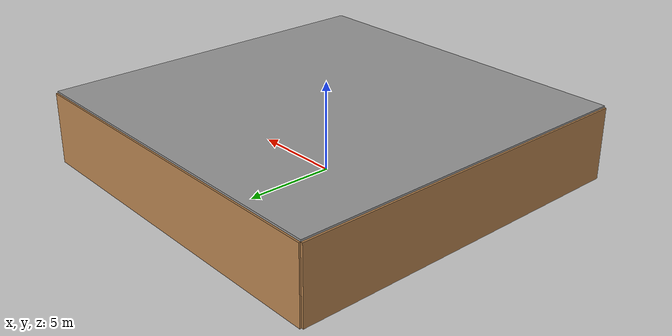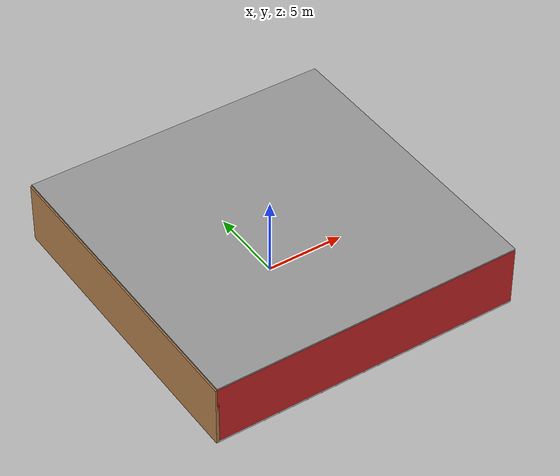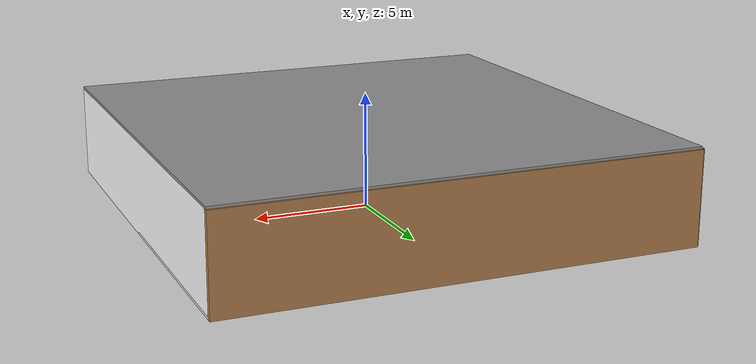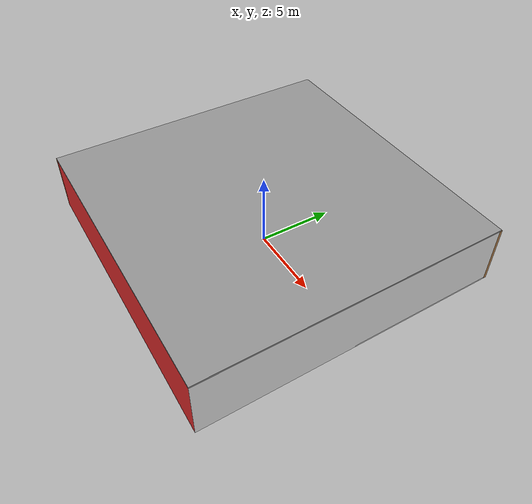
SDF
<sdf version="1.4">
 <world name="default">
  <physics type="ode">
   <max_step_size>0.001</max_step_size>
   <real_time_factor>1</real_time_factor>
   <real_time_update_rate>1000</real_time_update_rate>
   <gravity>0 0 -9.8</gravity>
  </physics>
  <scene><ambient>0.4 0.4 0.4 1</ambient><background>0.7 0.7 0.7 1</background><shadows>1</shadows></scene>
  <model name="Surrounding">
   <static>1</static>
   <link name="Ceiling">
    <collision name="Ceiling_Collision"><geometry><box><size>20 20 0.1</size></box></geometry></collision>
    <visual name="Ceiling_Visual">
     <geometry><box><size>20 20 0.1</size></box></geometry>
     <material>
      <script><uri>file://media/materials/scripts/gazebo.material</uri><name>Gazebo/GreyGradientSky</name></script>
     </material>
    </visual>
    <pose>0 0 4.05 0 0 0</pose>
   </link>
   <link name="Wall_South">
    <collision name="Wall_South_Collision">
     <geometry><box><size>20 0 4</size></box></geometry>
     <pose>0 0 2 0 -0 0</pose>
    </collision>
    <visual name="Wall_South_Visual">
     <pose>0 0 2 0 -0 0</pose>
     <geometry><box><size>20 0 4</size></box></geometry>
     <material>
      <script><uri>file://media/materials/scripts/gazebo.material</uri><name>Gazebo/RedBright</name></script>
     </material>
    </visual>
    <velocity_decay><linear>0</linear><angular>0</angular></velocity_decay>
    <pose>0 -10 0 0 -0 0</pose>
   </link>
   <link name="Wall_East">
    <collision name="Wall_21_Collision">
     <geometry><box><size>20 0 4</size></box></geometry>
     <pose>0 0 2 0 -0 0</pose>
    </collision>
    <visual name="Wall_21_Visual">
     <pose>0 0 2 0 -0 0</pose>
     <geometry><box><size>20 0 4</size></box></geometry>
     <material>
      <script><uri>file://media/materials/scripts/gazebo.material</uri><name>Gazebo/White</name></script>
     </material>
    </visual>
    <velocity_decay><linear>0</linear><angular>0</angular></velocity_decay>
    <pose>10 0 0 0 -0 1.5708</pose>
   </link>
   <link name="Wall_North">
    <collision name="Wall_22_Collision">
     <geometry><box><size>20 0.2 4</size></box></geometry>
     <pose>0 0 2 0 -0 0</pose>
    </collision>
    <visual name="Wall_22_Visual">
     <pose>0 0 2 0 -0 0</pose>
     <geometry><box><size>20 0.2 4</size></box></geometry>
     <material>
      <script><uri>file://media/materials/scripts/gazebo.material</uri><name>Gazebo/Wood</name></script>
     </material>
    </visual>
    <velocity_decay><linear>0</linear><angular>0</angular></velocity_decay>
    <pose>0 10 0 0 -0 0</pose>
   </link>
   <link name="Wall_West">
    <collision name="Wall_23_Collision">
     <geometry><box><size>20 0.2 4</size></box></geometry>
     <pose>0 0 2 0 -0 0</pose>
    </collision>
    <visual name="Wall_23_Visual">
     <pose>0 0 2 0 -0 0</pose>
     <geometry><box><size>20 0.2 4</size></box></geometry>
     <material>
      <script><uri>file://media/materials/scripts/gazebo.material</uri><name>Gazebo/Wood</name></script>
     </material>
    </visual>
    <velocity_decay><linear>0</linear><angular>0</angular></velocity_decay>
    <pose>-10 0 0 0 0 -1.5708</pose>
   </link>
   <link name="Ground_link">
    <collision name="collision">
     <pose>0 0 .05 0 -0 0</pose>
     <geometry><box><size>20 20 0.1</size></box></geometry>
    </collision>
    <visual name="visual">
     <pose>0 0 .05 0 -0 0</pose>
     <geometry><box><size>20 20 0.1</size></box></geometry>
     <material>
      <script><uri>file://media/materials/scripts/gazebo.material</uri><name>Gazebo/WhiteGlow</name></script>
     </material>
    </visual>
   </link>
   <static>1</static>
  </model>
  <spherical_coordinates>
   <surface_model>EARTH_WGS84</surface_model>
   <latitude_deg>0</latitude_deg>
   <longitude_deg>0</longitude_deg>
   <elevation>0</elevation>
   <heading_deg>0</heading_deg>
  </spherical_coordinates>
  <light name="lightball_0" type="diffuse">
   <diffuse>0.8 0.8 0.8 1</diffuse>
   <specular>0.2 0.2 0.2 1</specular>
   <attenuation>
    <range>100</range>
    <constant>0.7</constant>
    <linear>0.01</linear>
    <quadratic>0.001</quadratic>
   </attenuation>
   <direction>-0.5 0.1 -0.9</direction>
   <pose>-3.26980028444 -1.68408666708 1.90126720383 0 0 0</pose>
  </light>
  <light name="lightball_1" type="diffuse">
   <diffuse>0.8 0.8 0.8 1</diffuse>
   <specular>0.2 0.2 0.2 1</specular>
   <attenuation>
    <range>100</range>
    <constant>0.7</constant>
    <linear>0.01</linear>
    <quadratic>0.001</quadratic>
   </attenuation>
   <direction>-0.5 0.1 -0.9</direction>
   <pose>-2.20159857519 -0.261861743493 2.84079497677 0 0 0</pose>
  </light>
  <light name="lightball_2" type="diffuse">
   <diffuse>0.8 0.8 0.8 1</diffuse>
   <specular>0.2 0.2 0.2 1</specular>
   <attenuation>
    <range>100</range>
    <constant>0.7</constant>
    <linear>0.01</linear>
    <quadratic>0.001</quadratic>
   </attenuation>
   <direction>-0.5 0.1 -0.9</direction>
   <pose>8.49788224939 -4.67453816177 2.89758872677 0 0 0</pose>
  </light>
  <light name="lightball_3" type="diffuse">
   <diffuse>0.8 0.8 0.8 1</diffuse>
   <specular>0.2 0.2 0.2 1</specular>
   <attenuation>
    <range>100</range>
    <constant>0.7</constant>
    <linear>0.01</linear>
    <quadratic>0.001</quadratic>
   </attenuation>
   <direction>-0.5 0.1 -0.9</direction>
   <pose>-3.8959860481 -0.599190339103 2.87973514792 0 0 0</pose>
  </light>
  <light name="lightball_4" type="diffuse">
   <diffuse>0.8 0.8 0.8 1</diffuse>
   <specular>0.2 0.2 0.2 1</specular>
   <attenuation>
    <range>100</range>
    <constant>0.7</constant>
    <linear>0.01</linear>
    <quadratic>0.001</quadratic>
   </attenuation>
   <direction>-0.5 0.1 -0.9</direction>
   <pose>3.88741151494 7.08259996449 2.12677127411 0 0 0</pose>
  </light>
  <light name="lightball_5" type="diffuse">
   <diffuse>0.8 0.8 0.8 1</diffuse>
   <specular>0.2 0.2 0.2 1</specular>
   <attenuation>
    <range>100</range>
    <constant>0.7</constant>
    <linear>0.01</linear>
    <quadratic>0.001</quadratic>
   </attenuation>
   <direction>-0.5 0.1 -0.9</direction>
   <pose>-6.16797647905 9.14833165022 0.609415030081 0 0 0</pose>
  </light>
  <light name="lightball_6" type="diffuse">
   <diffuse>0.8 0.8 0.8 1</diffuse>
   <specular>0.2 0.2 0.2 1</specular>
   <attenuation>
    <range>100</range>
    <constant>0.7</constant>
    <linear>0.01</linear>
    <quadratic>0.001</quadratic>
   </attenuation>
   <direction>-0.5 0.1 -0.9</direction>
   <pose>8.64399271195 3.60582184838 2.04932760198 0 0 0</pose>
  </light>
  <light name="lightball_7" type="diffuse">
   <diffuse>0.8 0.8 0.8 1</diffuse>
   <specular>0.2 0.2 0.2 1</specular>
   <attenuation>
    <range>100</range>
    <constant>0.7</constant>
    <linear>0.01</linear>
    <quadratic>0.001</quadratic>
   </attenuation>
   <direction>-0.5 0.1 -0.9</direction>
   <pose>2.69216278024 -8.09841233172 0.792592780599 0 0 0</pose>
  </light>
  <light name="lightball_8" type="diffuse">
   <diffuse>0.8 0.8 0.8 1</diffuse>
   <specular>0.2 0.2 0.2 1</specular>
   <attenuation>
    <range>100</range>
    <constant>0.7</constant>
    <linear>0.01</linear>
    <quadratic>0.001</quadratic>
   </attenuation>
   <direction>-0.5 0.1 -0.9</direction>
   <pose>4.03606728346 5.54772684268 1.9495102645 0 0 0</pose>
  </light>
  <light name="lightball_9" type="diffuse">
   <diffuse>0.8 0.8 0.8 1</diffuse>
   <specular>0.2 0.2 0.2 1</specular>
   <attenuation>
    <range>100</range>
    <constant>0.7</constant>
    <linear>0.01</linear>
    <quadratic>0.001</quadratic>
   </attenuation>
   <direction>-0.5 0.1 -0.9</direction>
   <pose>6.90201426261 -0.10693852921 3.30290314648 0 0 0</pose>
  </light>
  <light name="lightball_10" type="diffuse">
   <diffuse>0.8 0.8 0.8 1</diffuse>
   <specular>0.2 0.2 0.2 1</specular>
   <attenuation>
    <range>100</range>
    <constant>0.7</constant>
    <linear>0.01</linear>
    <quadratic>0.001</quadratic>
   </attenuation>
   <direction>-0.5 0.1 -0.9</direction>
   <pose>4.47524869891 9.73822134109 3.49852844184 0 0 0</pose>
  </light>
  <light name="lightball_11" type="diffuse">
   <diffuse>0.8 0.8 0.8 1</diffuse>
   <specular>0.2 0.2 0.2 1</specular>
   <attenuation>
    <range>100</range>
    <constant>0.7</constant>
    <linear>0.01</linear>
    <quadratic>0.001</quadratic>
   </attenuation>
   <direction>-0.5 0.1 -0.9</direction>
   <pose>-8.17254613906 -3.6966283292 3.36789352096 0 0 0</pose>
  </light>
  <light name="lightball_12" type="diffuse">
   <diffuse>0.8 0.8 0.8 1</diffuse>
   <specular>0.2 0.2 0.2 1</specular>
   <attenuation>
    <range>100</range>
    <constant>0.7</constant>
    <linear>0.01</linear>
    <quadratic>0.001</quadratic>
   </attenuation>
   <direction>-0.5 0.1 -0.9</direction>
   <pose>-5.57744292422 0.698405925454 3.58131018156 0 0 0</pose>
  </light>
  <light name="lightball_13" type="diffuse">
   <diffuse>0.8 0.8 0.8 1</diffuse>
   <specular>0.2 0.2 0.2 1</specular>
   <attenuation>
    <range>100</range>
    <constant>0.7</constant>
    <linear>0.01</linear>
    <quadratic>0.001</quadratic>
   </attenuation>
   <direction>-0.5 0.1 -0.9</direction>
   <pose>5.69145255005 -3.42087854648 1.64953560101 0 0 0</pose>
  </light>
  <include><uri>model://cabinet</uri><pose>-7.95504699034 -4.21264459591 0 0 0 0.0279445837271</pose></include>
  <include><uri>model://cabinet</uri><pose>-5.08933675998 8.00846548184 0 0 0 2.6956579763</pose></include>
  <include>
   <uri>model://construction_cone</uri>
   <pose>-1.88560286105 -2.3055050722 0 0 0 1.19693921826</pose>
  </include>
  <include>
   <uri>model://robocup_3Dsim_goal</uri>
   <pose>-1.79213793126 3.31432104535 0 0 0 0.067658741901</pose>
  </include>
  <include><uri>model://cabinet</uri><pose>1.50495446099 -4.13294544637 0 0 0 1.92242644077</pose></include>
 </world>
</sdf>

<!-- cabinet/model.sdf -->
<sdf version="1.5">
  <model name="cabinet">
    <static>true</static>
    <link name="cabinet_bottom_plate">
      <inertial>
        <pose>0 0 -1 0 0 0</pose>
        <inertia>
          <ixx>2.050000</ixx>
          <ixy>0</ixy>
          <ixz>0</ixz>
          <iyy>2.050000</iyy>
          <iyz>0</iyz>
          <izz>2.050000</izz>
        </inertia>
        <mass>25.000000</mass>
      </inertial>
      <collision name="cabinet_bottom_plate_geom">
        <pose>0 0 0.010000 0 0 0</pose>
        <geometry>
          <box>
            <size>0.450000 0.450000 0.020000</size>
          </box>
        </geometry>
      </collision>
      <visual name="cabinet_bottom_plate_geom_visual">
        <pose>0 0 0.010000 0 0 0</pose>
        <geometry>
          <box>
            <size>0.450000 0.450000 0.020000</size>
          </box>
        </geometry>
        <material>
          <script>
            <uri>model://media/materials/scripts/gazebo.material</uri>
            <name>Gazebo/Wood</name>
          </script>
        </material>
      </visual>
      <collision name="cabinet_bottom_plate_geom_cabinet_back_plate">
        <pose>0.235000 0 0.510000 0 0 0</pose>
        <geometry>
          <box>
            <size>0.020000 0.450000 1.020000</size>
          </box>
        </geometry>
      </collision>
      <visual name="cabinet_bottom_plate_geom_cabinet_back_plate_visual">
        <pose>0.235000 0 0.510000 0 0 0</pose>
        <geometry>
          <box>
            <size>0.020000 0.450000 1.020000</size>
          </box>
        </geometry>
        <material>
          <script>
            <uri>model://media/materials/scripts/gazebo.material</uri>
            <name>Gazebo/Wood</name>
          </script>
        </material>
      </visual>
      <collision name="cabinet_bottom_plate_geom_cabinet_left_plate">
        <pose>0 0.235000 0.510000 0 0 0</pose>
        <geometry>
          <box>
            <size>0.450000 0.020000 1.020000</size>
          </box>
        </geometry>
      </collision>
      <visual name="cabinet_bottom_plate_geom_cabinet_left_plate_visual">
        <pose>0 0.235000 0.510000 0 0 0</pose>
        <geometry>
          <box>
            <size>0.450000 0.020000 1.020000</size>
          </box>
        </geometry>
        <material>
          <script>
            <uri>model://media/materials/scripts/gazebo.material</uri>
            <name>Gazebo/Wood</name>
          </script>
        </material>
      </visual>
      <collision name="cabinet_bottom_plate_geom_cabinet_middle_plate">
        <pose>0 0 0.510000 0 0 0</pose>
        <geometry>
          <box>
            <size>0.450000 0.450000 0.020000</size>
          </box>
        </geometry>
      </collision>
      <visual name="cabinet_bottom_plate_geom_cabinet_middle_plate_visual">
        <pose>0 0 0.510000 0 0 0</pose>
        <geometry>
          <box>
            <size>0.450000 0.450000 0.020000</size>
          </box>
        </geometry>
        <material>
          <script>
            <uri>model://media/materials/scripts/gazebo.material</uri>
            <name>Gazebo/Wood</name>
          </script>
        </material>
      </visual>
      <collision name="cabinet_bottom_plate_geom_cabinet_right_plate">
        <pose>0 -0.235000 0.510000 0 0 0</pose>
        <geometry>
          <box>
            <size>0.450000 0.020000 1.020000</size>
          </box>
        </geometry>
      </collision>
      <visual name="cabinet_bottom_plate_geom_cabinet_right_plate_visual">
        <pose>0 -0.235000 0.510000 0 0 0</pose>
        <geometry>
          <box>
            <size>0.450000 0.020000 1.020000</size>
          </box>
        </geometry>
        <material>
          <script>
            <uri>model://media/materials/scripts/gazebo.material</uri>
            <name>Gazebo/Wood</name>
          </script>
        </material>
      </visual>
      <collision name="cabinet_bottom_plate_geom_cabinet_top_plate">
        <pose>0 0 1.010000 0 0 0</pose>
        <geometry>
          <box>
            <size>0.450000 0.450000 0.020000</size>
          </box>
        </geometry>
      </collision>
      <visual name="cabinet_bottom_plate_geom_cabinet_top_plate_visual">
        <pose>0 0 1.010000 0 0 0</pose>
        <geometry>
          <box>
            <size>0.450000 0.450000 0.020000</size>
          </box>
        </geometry>
        <material>
          <script>
            <uri>model://media/materials/scripts/gazebo.material</uri>
            <name>Gazebo/Wood</name>
          </script>
        </material>
      </visual>
    </link>
  </model>
</sdf>

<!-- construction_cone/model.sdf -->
<sdf version="1.5">
  <model name="Construction Cone">
    <link name="link">
      <collision name="collision">
        <geometry>
          <mesh>
            <scale>10 10 10</scale>
            <uri>file://isr-testbed/construction_cone/meshes/construction_cone.dae</uri>
          </mesh>
        </geometry>
      </collision>
      <visual name="visual">
        <geometry>
          <mesh>
            <scale>10 10 10</scale>
            <uri>file://isr-testbed/construction_cone/meshes/construction_cone.dae</uri>
          </mesh>
        </geometry>
      </visual>
    </link>
  </model>
</sdf>

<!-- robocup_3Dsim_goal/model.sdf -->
<sdf version="1.5">
  <model name="robocup_3d_goal">
    <static>true</static>
    <link name="left_post">
      <pose>0 1.05 0.45 0 0 0</pose>
      <collision name="collision">
        <geometry>
          <cylinder>
            <radius>0.05</radius>
            <length>0.9</length>
          </cylinder>
        </geometry>
      </collision>
      <visual name="visual">
        <geometry>
          <cylinder>
            <radius>0.05</radius>
            <length>0.9</length>
          </cylinder>
        </geometry>
        <material>
          <script>
            <uri>file://media/materials/scripts/gazebo.material</uri>
            <name>Gazebo/ZincYellow</name>
          </script>
        </material>
      </visual>
    </link>
    <link name="left_support_horiz_lower">
      <pose>0.30 1.05 0.01 0 0 0</pose>
      <collision name="collision">
        <geometry>
          <box>
            <size>0.50 0.02 0.02</size>
          </box>
        </geometry>
      </collision>
      <visual name="visual">
        <geometry>
          <box>
            <size>0.50 0.02 0.02</size>
          </box>
        </geometry>
        <material>
          <script>
            <uri>file://media/materials/scripts/gazebo.material</uri>
            <name>Gazebo/White</name>
          </script>
        </material>
      </visual>
    </link>
    <link name="left_support_horiz_upper">
      <pose>0.30 1.05 0.79 0 0 0</pose>
      <collision name="collision">
        <geometry>
          <box>
            <size>0.50 0.02 0.02</size>
          </box>
        </geometry>
      </collision>
      <visual name="visual">
        <geometry>
          <box>
            <size>0.50 0.02 0.02</size>
          </box>
        </geometry>
        <material>
          <script>
            <uri>file://media/materials/scripts/gazebo.material</uri>
            <name>Gazebo/White</name>
          </script>
        </material>
      </visual>
    </link>
    <link name="left_support_vertical">
      <pose>0.56 1.05 0.4 0 1.5708 0</pose>
      <collision name="collision">
        <geometry>
          <box>
            <size>0.80 0.02 0.02</size>
          </box>
        </geometry>
      </collision>
      <visual name="visual">
        <geometry>
          <box>
            <size>0.80 0.02 0.02</size>
          </box>
        </geometry>
        <material>
          <script>
            <uri>file://media/materials/scripts/gazebo.material</uri>
            <name>Gazebo/White</name>
          </script>
        </material>
      </visual>
    </link>
    <link name="right_support_horiz_lower">
      <pose>0.30 -1.05 0.01 0 0 0</pose>
      <collision name="collision">
        <geometry>
          <box>
            <size>0.50 0.02 0.02</size>
          </box>
        </geometry>
      </collision>
      <visual name="visual">
        <geometry>
          <box>
            <size>0.50 0.02 0.02</size>
          </box>
        </geometry>
        <material>
          <script>
            <uri>file://media/materials/scripts/gazebo.material</uri>
            <name>Gazebo/White</name>
          </script>
        </material>
      </visual>
    </link>
    <link name="right_support_horiz_upper">
      <pose>0.30 -1.05 0.79 0 0 0</pose>
      <collision name="collision">
        <geometry>
          <box>
            <size>0.50 0.02 0.02</size>
          </box>
        </geometry>
      </collision>
      <visual name="visual">
        <geometry>
          <box>
            <size>0.50 0.02 0.02</size>
          </box>
        </geometry>
        <material>
          <script>
            <uri>file://media/materials/scripts/gazebo.material</uri>
            <name>Gazebo/White</name>
          </script>
        </material>
      </visual>
    </link>
    <link name="right_support_vertical">
      <pose>0.56 -1.05 0.4 0 1.5708 0</pose>
      <collision name="collision">
        <geometry>
          <box>
            <size>0.80 0.02 0.02</size>
          </box>
        </geometry>
      </collision>
      <visual name="visual">
        <geometry>
          <box>
            <size>0.80 0.02 0.02</size>
          </box>
        </geometry>
        <material>
          <script>
            <uri>file://media/materials/scripts/gazebo.material</uri>
            <name>Gazebo/White</name>
          </script>
        </material>
      </visual>
    </link>
    <link name="center_support_horiz_lower">
      <pose>0.56 0 0.01 0 1.5708 0</pose>
      <collision name="collision">
        <geometry>
          <box>
            <size>0.02 2.08 0.02</size>
          </box>
        </geometry>
      </collision>
      <visual name="visual">
        <geometry>
          <box>
            <size>0.02 2.08 0.02</size>
          </box>
        </geometry>
        <material>
          <script>
            <uri>file://media/materials/scripts/gazebo.material</uri>
            <name>Gazebo/White</name>
          </script>
        </material>
      </visual>
    </link>
    <link name="center_support_horiz_upper">
      <pose>0.56 0 0.79 0 1.5708 0</pose>
      <collision name="collision">
        <geometry>
          <box>
            <size>0.02 2.08 0.02</size>
          </box>
        </geometry>
      </collision>
      <visual name="visual">
        <geometry>
          <box>
            <size>0.02 2.08 0.02</size>
          </box>
        </geometry>
        <material>
          <script>
            <uri>file://media/materials/scripts/gazebo.material</uri>
            <name>Gazebo/White</name>
          </script>
        </material>
      </visual>
    </link>
    <link name="right_post">
      <pose>0 -1.05 0.45 0 0 0</pose>
      <collision name="collision">
        <geometry>
          <cylinder>
            <radius>0.05</radius>
            <length>0.9</length>
          </cylinder>
        </geometry>
      </collision>
      <visual name="visual">
        <geometry>
          <cylinder>
            <radius>0.05</radius>
            <length>0.9</length>
          </cylinder>
        </geometry>
        <material>
          <script>
            <uri>file://media/materials/scripts/gazebo.material</uri>
            <name>Gazebo/ZincYellow</name>
          </script>
        </material>
      </visual>
    </link>
    <link name="crossbar">
      <pose>0 0 0.85 1.57 1.57 0</pose>
      <collision name="collision">
        <geometry>
          <cylinder>
            <radius>0.05</radius>
            <length>2.0</length>
          </cylinder>
        </geometry>
      </collision>
      <visual name="visual">
        <geometry>
          <cylinder>
            <radius>0.05</radius>
            <length>2.0</length>
          </cylinder>
        </geometry>
        <material>
          <script>
            <uri>file://media/materials/scripts/gazebo.material</uri>
            <name>Gazebo/ZincYellow</name>
          </script>
        </material>
      </visual>
    </link>
    <link name="center_net">
      <pose>0.56 0 0.40 0 0 0</pose>
      <collision name="collision">
        <geometry>
          <box>
            <size>0.01 2.1 0.80</size>
          </box>
        </geometry>
      </collision>
      <visual name="visual">
        <geometry>
          <box>
            <size>0.01 2.1 0.80</size>
          </box>
        </geometry>
        <material>
          <script>
            <uri>model://../model_source/models/robocup09_spl_field/materials/scripts/</uri>
            <uri>model://../model_source/models/robocup09_spl_field/materials/textures/</uri>
            <name>RoboCup/Net</name>
          </script>
        </material>
      </visual>
    </link>
    <link name="left_net">
      <pose>0.30 1.05 0.40 0 0 0</pose>
      <collision name="collision">
        <geometry>
          <box>
            <size>0.50 0.01 0.76</size>
          </box>
        </geometry>
      </collision>
      <visual name="visual">
        <geometry>
          <box>
            <size>0.50 0.01 0.76</size>
          </box>
        </geometry>
        <material>
          <script>
            <uri>model://../model_source/models/robocup09_spl_field/materials/scripts/</uri>
            <uri>model://../model_source/models/robocup09_spl_field/materials/textures/</uri>
            <name>RoboCup/Net</name>
          </script>
        </material>
      </visual>
    </link>
    <link name="right_net">
      <pose>0.30 -1.05 0.40 0 0 0</pose>
      <collision name="collision">
        <geometry>
          <box>
            <size>0.50 0.01 0.76</size>
          </box>
        </geometry>
      </collision>
      <visual name="visual">
        <geometry>
          <box>
            <size>0.50 0.01 0.76</size>
          </box>
        </geometry>
        <material>
          <script>
            <uri>model://../model_source/models/robocup09_spl_field/materials/scripts/</uri>
            <uri>model://../model_source/models/robocup09_spl_field/materials/textures/</uri>
            <name>RoboCup/Net</name>
          </script>
        </material>
      </visual>
    </link>
  </model>
</sdf>
